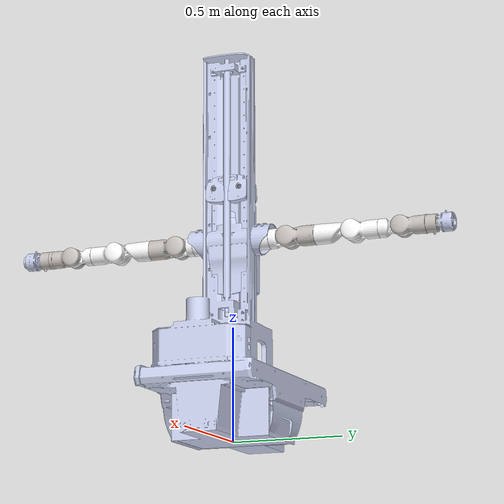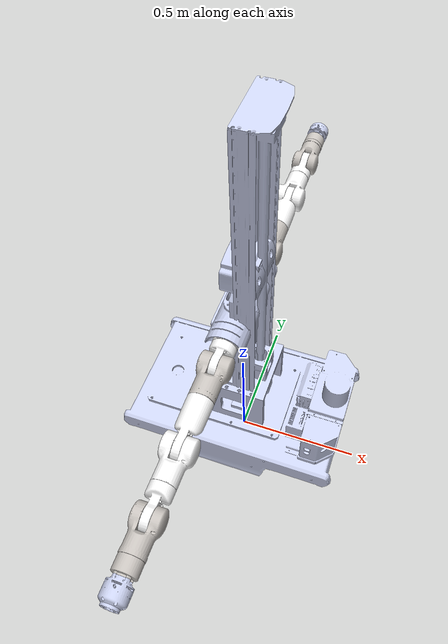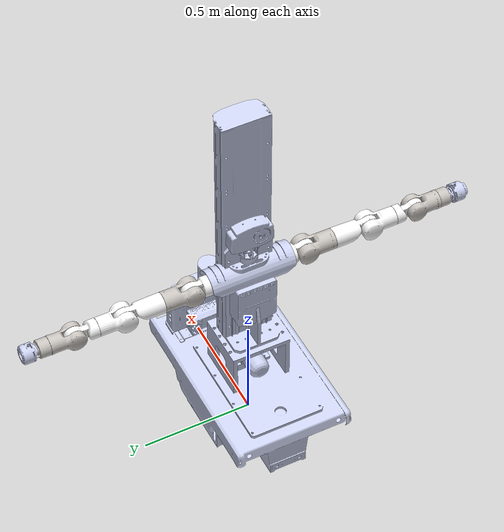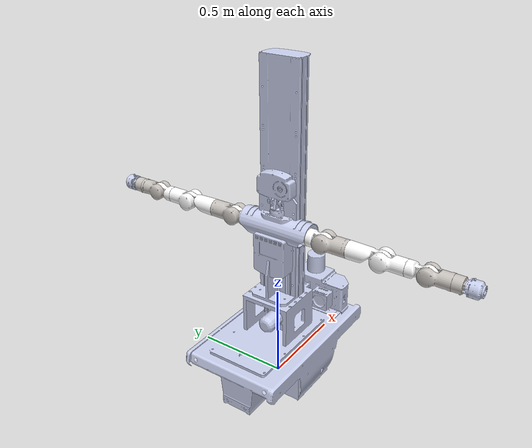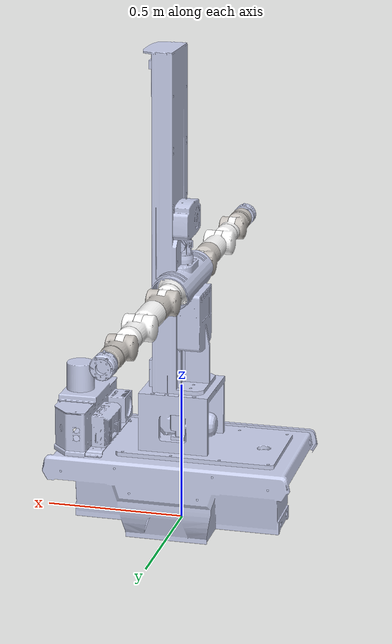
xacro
<?xml version="1.0" encoding="utf-8"?>
<robot name="t1" xmlns:xacro="http://ros.org/wiki/xacro">
  <xacro:property name = "pkg_address" value = "file://$(find t1_description)"/>
  <link name="fake_link">
    <visual>
        <origin xyz="0 0 0" rpy="0 0 0" />
        <geometry>
            <box size="0.001 0.001 0.001" />
        </geometry>
    </visual>
  </link>
  <joint name="fake_joint" type="fixed">
    <origin xyz="0 0 0.001" rpy="0 0 0" />
    <parent link="fake_link"/>
    <child link="base_link" />
  </joint>
  <link
    name="base_link">
    <inertial>
      <origin
        xyz="-0.0141157259588467 -0.016243923969749 0.343988437034855"
        rpy="0 0 0" />
      <mass
        value="6.29377720970293" />
      <inertia
        ixx="0.0915834842999805"
        ixy="-6.583736565642E-05"
        ixz="-0.00435126206558178"
        iyy="0.0797132412149553"
        iyz="-0.000288236319946359"
        izz="0.0318440700579395" />
    </inertial>
    <visual>
      <origin
        xyz="0 0 0"
        rpy="0 0 0" />
      <geometry>
        <mesh
          filename="${pkg_address}/meshes/base_link.STL" />
      </geometry>
      <material
        name="">
        <color
          rgba="0.792156862745098 0.819607843137255 0.933333333333333 1" />
      </material>
    </visual>
    <collision>
      <origin
        xyz="0 0 0"
        rpy="0 0 0" />
      <geometry>
        <mesh
          filename="${pkg_address}/meshes/base_link.STL" />
      </geometry>
    </collision>
  </link>
  <link
    name="Link-Body">
    <inertial>
      <origin
        xyz="-0.000158222660641603 -9.98278990237011E-06 -0.249624469139269"
        rpy="0 0 0" />
      <mass
        value="3.41445688652289" />
      <inertia
        ixx="0.0248203808488518"
        ixy="-2.36063985452956E-08"
        ixz="-0.000749290486872422"
        iyy="0.01388988449036"
        iyz="7.5730494352056E-07"
        izz="0.0185938049482952" />
    </inertial>
    <visual>
      <origin
        xyz="0 0 0"
        rpy="0 0 0" />
      <geometry>
        <mesh
          filename="${pkg_address}/meshes/Link-Body.STL" />
      </geometry>
      <material
        name="">
        <color
          rgba="0.792156862745098 0.819607843137255 0.933333333333333 1" />
      </material>
    </visual>
    <collision>
      <origin
        xyz="0 0 0"
        rpy="0 0 0" />
      <geometry>
        <mesh
          filename="${pkg_address}/meshes/Link-Body.STL" />
      </geometry>
    </collision>
  </link>
  <joint
    name="B0"
    type="prismatic">
    <origin
      xyz="0 0 0.95385"
      rpy="0 0 0" />
    <parent
      link="base_link" />
    <child
      link="Link-Body" />
    <axis
      xyz="0 0 -1" />
    <limit
      lower="-0.15"
      upper="0.0"
      effort="0"
      velocity="0" />
  </joint>
  <link
    name="link-R0">
    <inertial>
      <origin
        xyz="0.000428575028514344 -1.66664834211078E-05 0.0387665520212092"
        rpy="0 0 0" />
      <mass
        value="4.48243687136842" />
      <inertia
        ixx="0.00522193992152092"
        ixy="6.99003877943978E-07"
        ixz="4.82183712983686E-05"
        iyy="0.00516757527508353"
        iyz="-1.89822417332785E-06"
        izz="0.00566118382384462" />
    </inertial>
    <visual>
      <origin
        xyz="0 0 0"
        rpy="0 0 0" />
      <geometry>
        <mesh
          filename="${pkg_address}/meshes/link-R0.STL" />
      </geometry>
      <material
        name="">
        <color
          rgba="1 1 1 1" />
      </material>
    </visual>
    <collision>
      <origin
        xyz="0 0 0"
        rpy="0 0 0" />
      <geometry>
        <mesh
          filename="${pkg_address}/meshes/link-R0.STL" />
      </geometry>
    </collision>
  </link>
  <joint
    name="R-J0"
    type="fixed">
    <origin
      xyz="0 -0.09 -0.075"
      rpy="1.5708 1.5708 0" />
    <parent
      link="Link-Body" />
    <child
      link="link-R0" />
    <axis
      xyz="0 0 0" />
  </joint>
  <link
    name="link-R1">
    <inertial>
      <origin
        xyz="-3.21247843160233E-06 0.00052447279922216 -0.0441242557856534"
        rpy="0 0 0" />
      <mass
        value="3.29940267206034" />
      <inertia
        ixx="0.00538935884644845"
        ixy="-3.40948002179718E-09"
        ixz="-4.54525514109768E-07"
        iyy="0.00597533433884467"
        iyz="-7.64162243136917E-05"
        izz="0.00258712975386507" />
    </inertial>
    <visual>
      <origin
        xyz="0 0 0"
        rpy="0 0 0" />
      <geometry>
        <mesh
          filename="${pkg_address}/meshes/link-R1.STL" />
      </geometry>
      <material
        name="">
        <color
          rgba="1 1 1 1" />
      </material>
    </visual>
    <collision>
      <origin
        xyz="0 0 0"
        rpy="0 0 0" />
      <geometry>
        <mesh
          filename="${pkg_address}/meshes/link-R1.STL" />
      </geometry>
    </collision>
  </link>
  <joint
    name="R-J1"
    type="revolute">
    <origin
      xyz="0 0 0.172"
      rpy="0 0 0" />
    <parent
      link="link-R0" />
    <child
      link="link-R1" />
    <axis
      xyz="0 0 1" />
    <limit
      lower="-3.0"
      upper="3.0"
      effort="0"
      velocity="0" />
  </joint>
  <link
    name="link-R2">
    <inertial>
      <origin
        xyz="-1.21016987286726E-06 -0.0553985267336023 -0.00166564475227282"
        rpy="0 0 0" />
      <mass
        value="5.63523258516487" />
      <inertia
        ixx="0.0152384536230366"
        ixy="-1.14870185368694E-06"
        ixz="-2.68515710848592E-08"
        iyy="0.00674678421570552"
        iyz="0.000400962979098617"
        izz="0.0142810956251759" />
    </inertial>
    <visual>
      <origin
        xyz="0 0 0"
        rpy="0 0 0" />
      <geometry>
        <mesh
          filename="${pkg_address}/meshes/link-R2.STL" />
      </geometry>
      <material
        name="">
        <color
          rgba="0.776470588235294 0.756862745098039 0.737254901960784 1" />
      </material>
    </visual>
    <collision>
      <origin
        xyz="0 0 0"
        rpy="0 0 0" />
      <geometry>
        <mesh
          filename="${pkg_address}/meshes/link-R2.STL" />
      </geometry>
    </collision>
  </link>
  <joint
    name="R-J2"
    type="revolute">
    <origin
      xyz="0 0 0"
      rpy="-1.5708 0 0" />
    <parent
      link="link-R1" />
    <child
      link="link-R2" />
    <axis
      xyz="0 0 1" />
    <limit
      lower="-1.6"
      upper="1.6"
      effort="0"
      velocity="0" />
  </joint>
  <link
    name="link-R3">
    <inertial>
      <origin
        xyz="-0.00236928911888323 0.000256017152003125 -0.0989215512578251"
        rpy="0 0 0" />
      <mass
        value="6.76099941307626" />
      <inertia
        ixx="0.0241007935216869"
        ixy="-4.07055219750389E-06"
        ixz="0.00052429441504994"
        iyy="0.0245027073583885"
        iyz="-0.000170307131198768"
        izz="0.0057717631268867" />
    </inertial>
    <visual>
      <origin
        xyz="0 0 0"
        rpy="0 0 0" />
      <geometry>
        <mesh
          filename="${pkg_address}/meshes/link-R3.STL" />
      </geometry>
      <material
        name="">
        <color
          rgba="1 1 1 1" />
      </material>
    </visual>
    <collision>
      <origin
        xyz="0 0 0"
        rpy="0 0 0" />
      <geometry>
        <mesh
          filename="${pkg_address}/meshes/link-R3.STL" />
      </geometry>
    </collision>
  </link>
  <joint
    name="R-J3"
    type="revolute">
    <origin
      xyz="0 -0.3 0"
      rpy="1.5708 0 0" />
    <parent
      link="link-R2" />
    <child
      link="link-R3" />
    <axis
      xyz="0 0 1" />
    <limit
      lower="-3.0"
      upper="3.0"
      effort="0"
      velocity="0" />
  </joint>
  <link
    name="link-R4">
    <inertial>
      <origin
        xyz="1.55020330738775E-06 -0.0327095870323233 -0.000281996819201036"
        rpy="0 0 0" />
      <mass
        value="6.86474413283516" />
      <inertia
        ixx="0.0198391962830934"
        ixy="-2.77202330132049E-07"
        ixz="-1.52336964151243E-08"
        iyy="0.00950734139914809"
        iyz="5.51814068233546E-05"
        izz="0.0163570915356325" />
    </inertial>
    <visual>
      <origin
        xyz="0 0 0"
        rpy="0 0 0" />
      <geometry>
        <mesh
          filename="${pkg_address}/meshes/link-R4.STL" />
      </geometry>
      <material
        name="">
        <color
          rgba="1 1 1 1" />
      </material>
    </visual>
    <collision>
      <origin
        xyz="0 0 0"
        rpy="0 0 0" />
      <geometry>
        <mesh
          filename="${pkg_address}/meshes/link-R4.STL" />
      </geometry>
    </collision>
  </link>
  <joint
    name="R-J4"
    type="revolute">
    <origin
      xyz="0 0 0"
      rpy="-1.5708 0 0" />
    <parent
      link="link-R3" />
    <child
      link="link-R4" />
    <axis
      xyz="0 0 1" />
    <limit
      lower="-1.7"
      upper="2.2"
      effort="0"
      velocity="0" />
  </joint>
  <link
    name="link-R5">
    <inertial>
      <origin
        xyz="2.61938777335047E-06 0.000664248517209838 -0.0552339020133823"
        rpy="0 0 0" />
      <mass
        value="3.13715935450461" />
      <inertia
        ixx="0.00617168729257164"
        ixy="9.57723919184407E-08"
        ixz="-4.53982816082469E-07"
        iyy="0.00650310856970505"
        iyz="-0.000114073990108045"
        izz="0.00207599235031165" />
    </inertial>
    <visual>
      <origin
        xyz="0 0 0"
        rpy="0 0 0" />
      <geometry>
        <mesh
          filename="${pkg_address}/meshes/link-R5.STL" />
      </geometry>
      <material
        name="">
        <color
          rgba="1 1 1 1" />
      </material>
    </visual>
    <collision>
      <origin
        xyz="0 0 0"
        rpy="0 0 0" />
      <geometry>
        <mesh
          filename="${pkg_address}/meshes/link-R5.STL" />
      </geometry>
    </collision>
  </link>
  <joint
    name="R-J5"
    type="revolute">
    <origin
      xyz="0 -0.22 0"
      rpy="1.5708 0 0" />
    <parent
      link="link-R4" />
    <child
      link="link-R5" />
    <axis
      xyz="0 0 1" />
    <limit
      lower="-3.0"
      upper="3.0"
      effort="0"
      velocity="0" />
  </joint>
  <link
    name="link-R6">
    <inertial>
      <origin
        xyz="1.46922276367256E-06 -0.0320401134442208 -0.000354045768412677"
        rpy="0 0 0" />
      <mass
        value="5.41190432381934" />
      <inertia
        ixx="0.0130568238032191"
        ixy="-2.44895572730433E-07"
        ixz="1.52953724925499E-07"
        iyy="0.00624175373758098"
        iyz="5.44179711474995E-05"
        izz="0.0110970473747011" />
    </inertial>
    <visual>
      <origin
        xyz="0 0 0"
        rpy="0 0 0" />
      <geometry>
        <mesh
          filename="${pkg_address}/meshes/link-R6.STL" />
      </geometry>
      <material
        name="">
        <color
          rgba="0.776470588235294 0.756862745098039 0.737254901960784 1" />
      </material>
    </visual>
    <collision>
      <origin
        xyz="0 0 0"
        rpy="0 0 0" />
      <geometry>
        <mesh
          filename="${pkg_address}/meshes/link-R6.STL" />
      </geometry>
    </collision>
  </link>
  <joint
    name="R-J6"
    type="revolute">
    <origin
      xyz="0 0 0"
      rpy="-1.5708 0 0" />
    <parent
      link="link-R5" />
    <child
      link="link-R6" />
    <axis
      xyz="0 0 1" />
    <limit
      lower="-2.0"
      upper="2.0"
      effort="0"
      velocity="0" />
  </joint>
  <link
    name="link-R7">
    <inertial>
      <origin
        xyz="0.000201227208657229 -4.45951571791942E-06 -0.0324015634635619"
        rpy="0 0 0" />
      <mass
        value="2.17471093562456" />
      <inertia
        ixx="0.00140827770383968"
        ixy="-4.53525874180464E-09"
        ixz="-1.01773030744789E-05"
        iyy="0.00142257226784241"
        iyz="-2.45339325555032E-07"
        izz="0.00166147868684454" />
    </inertial>
    <visual>
      <origin
        xyz="0 0 0"
        rpy="0 0 0" />
      <geometry>
        <mesh
          filename="${pkg_address}/meshes/link-R7.STL" />
      </geometry>
      <material
        name="">
        <color
          rgba="0.776470588235294 0.756862745098039 0.737254901960784 1" />
      </material>
    </visual>
    <collision>
      <origin
        xyz="0 0 0"
        rpy="0 0 0" />
      <geometry>
        <mesh
          filename="${pkg_address}/meshes/link-R7.STL" />
      </geometry>
    </collision>
  </link>
  <joint
    name="R-J7"
    type="revolute">
    <origin
      xyz="0 -0.164 0"
      rpy="1.5708 0 0" />
    <parent
      link="link-R6" />
    <child
      link="link-R7" />
    <axis
      xyz="0 0 1" />
    <limit
      lower="-3.0"
      upper="3.0"
      effort="0"
      velocity="0" />
  </joint>
  <link
    name="link-Rtool">
    <inertial>
      <origin
        xyz="0.000108228106315056 -1.58700646321033E-05 -0.0332171149652771"
        rpy="0 0 0" />
      <mass
        value="0.2339522890314" />
      <inertia
        ixx="0.000108307997361677"
        ixy="5.76555958161387E-08"
        ixz="-9.61151743846959E-08"
        iyy="0.000110720195394878"
        iyz="-8.59971960181812E-09"
        izz="0.000197661960567637" />
    </inertial>
    <visual>
      <origin
        xyz="0 0 0"
        rpy="0 0 0" />
      <geometry>
        <mesh
          filename="${pkg_address}/meshes/link-Rtool.STL" />
      </geometry>
      <material
        name="">
        <color
          rgba="0.792156862745098 0.819607843137255 0.933333333333333 1" />
      </material>
    </visual>
    <collision>
      <origin
        xyz="0 0 0"
        rpy="0 0 0" />
      <geometry>
        <mesh
          filename="${pkg_address}/meshes/link-Rtool.STL" />
      </geometry>
    </collision>
  </link>
  <joint
    name="R-tool"
    type="fixed">
    <origin
      xyz="0 0 0.072399"
      rpy="0 0 0" />
    <parent
      link="link-R7" />
    <child
      link="link-Rtool" />
    <axis
      xyz="0 0 0" />
  </joint>
  <link
    name="link-L0">
    <inertial>
      <origin
        xyz="0.000428575028515121 -1.66664835126598E-05 0.0387665520212093"
        rpy="0 0 0" />
      <mass
        value="4.48243687136841" />
      <inertia
        ixx="0.00522193992152107"
        ixy="6.99003877942915E-07"
        ixz="4.82183712984472E-05"
        iyy="0.00516757527508331"
        iyz="-1.89822417332259E-06"
        izz="0.00566118382384421" />
    </inertial>
    <visual>
      <origin
        xyz="0 0 0"
        rpy="0 0 0" />
      <geometry>
        <mesh
          filename="${pkg_address}/meshes/link-L0.STL" />
      </geometry>
      <material
        name="">
        <color
          rgba="1 1 1 1" />
      </material>
    </visual>
    <collision>
      <origin
        xyz="0 0 0"
        rpy="0 0 0" />
      <geometry>
        <mesh
          filename="${pkg_address}/meshes/link-L0.STL" />
      </geometry>
    </collision>
  </link>
  <joint
    name="L-J0"
    type="fixed">
    <origin
      xyz="0 0.09 -0.075"
      rpy="-1.5708 1.5708 0" />
    <parent
      link="Link-Body" />
    <child
      link="link-L0" />
    <axis
      xyz="0 0 0" />
  </joint>
  <link
    name="link-L1">
    <inertial>
      <origin
        xyz="3.21247853196649E-06 -0.000524470579303316 -0.0441242557403994"
        rpy="0 0 0" />
      <mass
        value="3.29940267206884" />
      <inertia
        ixx="0.00538963812553377"
        ixy="-3.40950248056596E-09"
        ixz="4.54525585935868E-07"
        iyy="0.00597561361790467"
        iyz="7.6416224176846E-05"
        izz="0.00258712975381606" />
    </inertial>
    <visual>
      <origin
        xyz="0 0 0"
        rpy="0 0 0" />
      <geometry>
        <mesh
          filename="${pkg_address}/meshes/link-L1.STL" />
      </geometry>
      <material
        name="">
        <color
          rgba="1 1 1 1" />
      </material>
    </visual>
    <collision>
      <origin
        xyz="0 0 0"
        rpy="0 0 0" />
      <geometry>
        <mesh
          filename="${pkg_address}/meshes/link-L1.STL" />
      </geometry>
    </collision>
  </link>
  <joint
    name="L-J1"
    type="revolute">
    <origin
      xyz="0 0 0.172"
      rpy="0 0 0" />
    <parent
      link="link-L0" />
    <child
      link="link-L1" />
    <axis
      xyz="0 0 1" />
    <limit
      lower="-3.0"
      upper="3.0"
      effort="0"
      velocity="0" />
  </joint>
  <link
    name="link-L2">
    <inertial>
      <origin
        xyz="1.21053463841836E-06 -0.0553985275990222 0.00166564644389522"
        rpy="0 0 0" />
      <mass
        value="5.63523249981778" />
      <inertia
        ixx="0.0152384532072431"
        ixy="1.14857930990098E-06"
        ixz="-2.6926023618803E-08"
        iyy="0.00674678405526804"
        iyz="-0.000400962800547983"
        izz="0.0142810952659943" />
    </inertial>
    <visual>
      <origin
        xyz="0 0 0"
        rpy="0 0 0" />
      <geometry>
        <mesh
          filename="${pkg_address}/meshes/link-L2.STL" />
      </geometry>
      <material
        name="">
        <color
          rgba="0.776470588235294 0.756862745098039 0.737254901960784 1" />
      </material>
    </visual>
    <collision>
      <origin
        xyz="0 0 0"
        rpy="0 0 0" />
      <geometry>
        <mesh
          filename="${pkg_address}/meshes/link-L2.STL" />
      </geometry>
    </collision>
  </link>
  <joint
    name="L-J2"
    type="revolute">
    <origin
      xyz="0 0 0"
      rpy="-1.5708 0 0" />
    <parent
      link="link-L1" />
    <child
      link="link-L2" />
    <axis
      xyz="0 0 1" />
    <limit
      lower="-1.6"
      upper="1.6"
      effort="0"
      velocity="0" />
  </joint>
  <link
    name="link-L3">
    <inertial>
      <origin
        xyz="-0.00237096053014541 -0.000255872829113588 -0.0989215541692502"
        rpy="0 0 0" />
      <mass
        value="6.76099916761065" />
      <inertia
        ixx="0.024100801563671"
        ixy="4.13004276507571E-06"
        ixz="0.000525412389026435"
        iyy="0.0245026519037375"
        iyz="0.000172055474478548"
        izz="0.00577171893802094" />
    </inertial>
    <visual>
      <origin
        xyz="0 0 0"
        rpy="0 0 0" />
      <geometry>
        <mesh
          filename="${pkg_address}/meshes/link-L3.STL" />
      </geometry>
      <material
        name="">
        <color
          rgba="1 1 1 1" />
      </material>
    </visual>
    <collision>
      <origin
        xyz="0 0 0"
        rpy="0 0 0" />
      <geometry>
        <mesh
          filename="${pkg_address}/meshes/link-L3.STL" />
      </geometry>
    </collision>
  </link>
  <joint
    name="L-J3"
    type="revolute">
    <origin
      xyz="0 -0.3 0"
      rpy="1.5708 0 0" />
    <parent
      link="link-L2" />
    <child
      link="link-L3" />
    <axis
      xyz="0 0 1" />
    <limit
      lower="-3.0"
      upper="3.0"
      effort="0"
      velocity="0" />
  </joint>
  <link
    name="link-L4">
    <inertial>
      <origin
        xyz="-1.55086507591662E-06 -0.03270958685873 0.000281998045914173"
        rpy="0 0 0" />
      <mass
        value="6.8647438933608" />
      <inertia
        ixx="0.0198391959633156"
        ixy="2.77181498871418E-07"
        ixz="-1.54048707117185E-08"
        iyy="0.00950734101323492"
        iyz="-5.51813656186912E-05"
        izz="0.0163570914575466" />
    </inertial>
    <visual>
      <origin
        xyz="0 0 0"
        rpy="0 0 0" />
      <geometry>
        <mesh
          filename="${pkg_address}/meshes/link-L4.STL" />
      </geometry>
      <material
        name="">
        <color
          rgba="1 1 1 1" />
      </material>
    </visual>
    <collision>
      <origin
        xyz="0 0 0"
        rpy="0 0 0" />
      <geometry>
        <mesh
          filename="${pkg_address}/meshes/link-L4.STL" />
      </geometry>
    </collision>
  </link>
  <joint
    name="L-J4"
    type="revolute">
    <origin
      xyz="0 0 0"
      rpy="-1.5708 0 0" />
    <parent
      link="link-L3" />
    <child
      link="link-L4" />
    <axis
      xyz="0 0 1" />
    <limit
      lower="-1.7"
      upper="2.2"
      effort="0"
      velocity="0" />
  </joint>
  <link
    name="link-L5">
    <inertial>
      <origin
        xyz="-2.61938705747866E-06 -0.000664248517338731 -0.055233902013257"
        rpy="0 0 0" />
      <mass
        value="3.13715935446969" />
      <inertia
        ixx="0.00617168729256577"
        ixy="9.57723801003196E-08"
        ixz="4.53982841712062E-07"
        iyy="0.00650310856968162"
        iyz="0.000114073990132103"
        izz="0.00207599235028679" />
    </inertial>
    <visual>
      <origin
        xyz="0 0 0"
        rpy="0 0 0" />
      <geometry>
        <mesh
          filename="${pkg_address}/meshes/link-L5.STL" />
      </geometry>
      <material
        name="">
        <color
          rgba="1 1 1 1" />
      </material>
    </visual>
    <collision>
      <origin
        xyz="0 0 0"
        rpy="0 0 0" />
      <geometry>
        <mesh
          filename="${pkg_address}/meshes/link-L5.STL" />
      </geometry>
    </collision>
  </link>
  <joint
    name="L-J5"
    type="revolute">
    <origin
      xyz="0 -0.22 0"
      rpy="1.5708 0 0" />
    <parent
      link="link-L4" />
    <child
      link="link-L5" />
    <axis
      xyz="0 0 1" />
    <limit
      lower="-3.0"
      upper="3.0"
      effort="0"
      velocity="0" />
  </joint>
  <link
    name="link-L6">
    <inertial>
      <origin
        xyz="-1.46922276367256E-06 -0.0320401134442211 0.000354045767970301"
        rpy="0 0 0" />
      <mass
        value="5.41190432381933" />
      <inertia
        ixx="0.0130568238032191"
        ixy="2.44895572741051E-07"
        ixz="1.52953724937942E-07"
        iyy="0.00624175373758096"
        iyz="-5.44179711474945E-05"
        izz="0.0110970473747011" />
    </inertial>
    <visual>
      <origin
        xyz="0 0 0"
        rpy="0 0 0" />
      <geometry>
        <mesh
          filename="${pkg_address}/meshes/link-L6.STL" />
      </geometry>
      <material
        name="">
        <color
          rgba="0.776470588235294 0.756862745098039 0.737254901960784 1" />
      </material>
    </visual>
    <collision>
      <origin
        xyz="0 0 0"
        rpy="0 0 0" />
      <geometry>
        <mesh
          filename="${pkg_address}/meshes/link-L6.STL" />
      </geometry>
    </collision>
  </link>
  <joint
    name="L-J6"
    type="revolute">
    <origin
      xyz="0 0 0"
      rpy="-1.5708 0 0" />
    <parent
      link="link-L5" />
    <child
      link="link-L6" />
    <axis
      xyz="0 0 1" />
    <limit
      lower="-2.0"
      upper="2.0"
      effort="0"
      velocity="0" />
  </joint>
  <link
    name="link-L7">
    <inertial>
      <origin
        xyz="0.000201227208658783 -4.45951226892607E-06 -0.0324015634635619"
        rpy="0 0 0" />
      <mass
        value="2.17471093562457" />
      <inertia
        ixx="0.00140827770383969"
        ixy="-4.53525875977644E-09"
        ixz="-1.01773030744803E-05"
        iyy="0.00142257226784241"
        iyz="-2.45339325109591E-07"
        izz="0.00166147868684455" />
    </inertial>
    <visual>
      <origin
        xyz="0 0 0"
        rpy="0 0 0" />
      <geometry>
        <mesh
          filename="${pkg_address}/meshes/link-L7.STL" />
      </geometry>
      <material
        name="">
        <color
          rgba="0.776470588235294 0.756862745098039 0.737254901960784 1" />
      </material>
    </visual>
    <collision>
      <origin
        xyz="0 0 0"
        rpy="0 0 0" />
      <geometry>
        <mesh
          filename="${pkg_address}/meshes/link-L7.STL" />
      </geometry>
    </collision>
  </link>
  <joint
    name="L-J7"
    type="revolute">
    <origin
      xyz="0 -0.164 0"
      rpy="1.5708 0 0" />
    <parent
      link="link-L6" />
    <child
      link="link-L7" />
    <axis
      xyz="0 0 1" />
    <limit
      lower="-3.0"
      upper="3.0"
      effort="0"
      velocity="0" />
  </joint>
  <link
    name="link-Ltool">
    <inertial>
      <origin
        xyz="0.000109753641508337 -1.60937678912339E-05 -0.0269481337256519"
        rpy="0 0 0" />
      <mass
        value="0.230700440407675" />
      <inertia
        ixx="0.000104208489619374"
        ixy="5.76643215390994E-08"
        ixz="-6.47742951675387E-08"
        iyy="0.000106620567904689"
        iyz="-3.13502539430455E-09"
        izz="0.000192988356501623" />
    </inertial>
    <visual>
      <origin
        xyz="0 0 0"
        rpy="0 0 0" />
      <geometry>
        <mesh
          filename="${pkg_address}/meshes/link-Ltool.STL" />
      </geometry>
      <material
        name="">
        <color
          rgba="0.792156862745098 0.819607843137255 0.933333333333333 1" />
      </material>
    </visual>
    <collision>
      <origin
        xyz="0 0 0"
        rpy="0 0 0" />
      <geometry>
        <mesh
          filename="${pkg_address}/meshes/link-Ltool.STL" />
      </geometry>
    </collision>
  </link>
  <joint
    name="L-tool"
    type="fixed">
    <origin
      xyz="0 0 0.064399"
      rpy="0 0 0" />
    <parent
      link="link-L7" />
    <child
      link="link-Ltool" />
    <axis
      xyz="0 0 0" />
  </joint>
  <link
    name="link-H1">
    <inertial>
      <origin
        xyz="0.00143601240487204 0.00399729515756818 -0.0130277192812951"
        rpy="0 0 0" />
      <mass
        value="0.0972089924761052" />
      <inertia
        ixx="2.39224248667145E-05"
        ixy="-1.46844515801985E-07"
        ixz="-2.53729271028935E-06"
        iyy="3.68919711015593E-05"
        iyz="-1.36177837798517E-07"
        izz="3.47334776195984E-05" />
    </inertial>
    <visual>
      <origin
        xyz="0 0 0"
        rpy="0 0 0" />
      <geometry>
        <mesh
          filename="${pkg_address}/meshes/link-H1.STL" />
      </geometry>
      <material
        name="">
        <color
          rgba="0.792156862745098 0.819607843137255 0.933333333333333 1" />
      </material>
    </visual>
    <collision>
      <origin
        xyz="0 0 0"
        rpy="0 0 0" />
      <geometry>
        <mesh
          filename="${pkg_address}/meshes/link-H1.STL" />
      </geometry>
    </collision>
  </link>
  <joint
    name="H-J1"
    type="revolute">
    <origin
      xyz="0 0 0.06655"
      rpy="0 0 0" />
    <parent
      link="Link-Body" />
    <child
      link="link-H1" />
    <axis
      xyz="0 0 1" />
    <limit
      lower="-1.5"
      upper="1.5"
      effort="0"
      velocity="0" />
  </joint>
  <link
    name="link-H2">
    <inertial>
      <origin
        xyz="0.0207949033546969 -0.0845619965913866 0.000741712456376936"
        rpy="0 0 0" />
      <mass
        value="0.370390486643493" />
      <inertia
        ixx="0.00194303023381918"
        ixy="-0.000181411351354721"
        ixz="1.91808717006784E-06"
        iyy="0.00152247523425536"
        iyz="8.46665148980628E-07"
        izz="0.000842200739248113" />
    </inertial>
    <visual>
      <origin
        xyz="0 0 0"
        rpy="0 0 0" />
      <geometry>
        <mesh
          filename="${pkg_address}/meshes/link-H2.STL" />
      </geometry>
      <material
        name="">
        <color
          rgba="0.792156862745098 0.819607843137255 0.933333333333333 1" />
      </material>
    </visual>
    <collision>
      <origin
        xyz="0 0 0"
        rpy="0 0 0" />
      <geometry>
        <mesh
          filename="${pkg_address}/meshes/link-H2.STL" />
      </geometry>
    </collision>
  </link>
  <joint
    name="H-J2"
    type="revolute">
    <origin
      xyz="0 0 0"
      rpy="-1.5708 0 0" />
    <parent
      link="link-H1" />
    <child
      link="link-H2" />
    <axis
      xyz="0 0 1" />
    <limit
      lower="-0.6"
      upper="0.6"
      effort="0"
      velocity="0" />
  </joint>
  <link
    name="link-realsense">
    <inertial>
      <origin
        xyz="0.0322543973766937 6.03311451741195E-05 -0.0125498677286611"
        rpy="0 0 0" />
      <mass
        value="0.0447467346825886" />
      <inertia
        ixx="3.94486312086179E-06"
        ixy="-3.10253534750564E-09"
        ixz="-2.44513323098506E-07"
        iyy="2.73626273399762E-05"
        iyz="1.09632494455274E-09"
        izz="2.72781163687652E-05" />
    </inertial>
    <visual>
      <origin
        xyz="0 0 0"
        rpy="0 0 0" />
      <geometry>
        <mesh
          filename="${pkg_address}/meshes/link-realsense.STL" />
      </geometry>
      <material
        name="">
        <color
          rgba="0.792156862745098 0.819607843137255 0.933333333333333 1" />
      </material>
    </visual>
    <collision>
      <origin
        xyz="0 0 0"
        rpy="0 0 0" />
      <geometry>
        <mesh
          filename="${pkg_address}/meshes/link-realsense.STL" />
      </geometry>
    </collision>
  </link>
  <joint
    name="J-realsense"
    type="fixed">
    <origin
      xyz="0.07 -0.1305 0.032498"
      rpy="0 1.5708 0" />
    <parent
      link="link-H2" />
    <child
      link="link-realsense" />
    <axis
      xyz="0 0 0" />
  </joint>
  <link
    name="link-zed">
    <inertial>
      <origin
        xyz="0.0599972921253115 -6.22581938003464E-06 -0.0161109295439454"
        rpy="0 0 0" />
      <mass
        value="0.152411603276628" />
      <inertia
        ixx="2.28615404676849E-05"
        ixy="6.23560448591353E-09"
        ixz="2.39741447862122E-09"
        iyy="0.000374755634963032"
        iyz="-2.078661904509E-08"
        izz="0.000372358631105381" />
    </inertial>
    <visual>
      <origin
        xyz="0 0 0"
        rpy="0 0 0" />
      <geometry>
        <mesh
          filename="${pkg_address}/meshes/link-zed.STL" />
      </geometry>
      <material
        name="">
        <color
          rgba="0.411764705882353 0.411764705882353 0.411764705882353 1" />
      </material>
    </visual>
    <collision>
      <origin
        xyz="0 0 0"
        rpy="0 0 0" />
      <geometry>
        <mesh
          filename="${pkg_address}/meshes/link-zed.STL" />
      </geometry>
    </collision>
  </link>
  <joint
    name="J-zed"
    type="fixed">
    <origin
      xyz="0.068259 -0.091783 0.059998"
      rpy="0 1.5708 0" />
    <parent
      link="link-H2" />
    <child
      link="link-zed" />
    <axis
      xyz="0 0 0" />
  </joint>
</robot>
